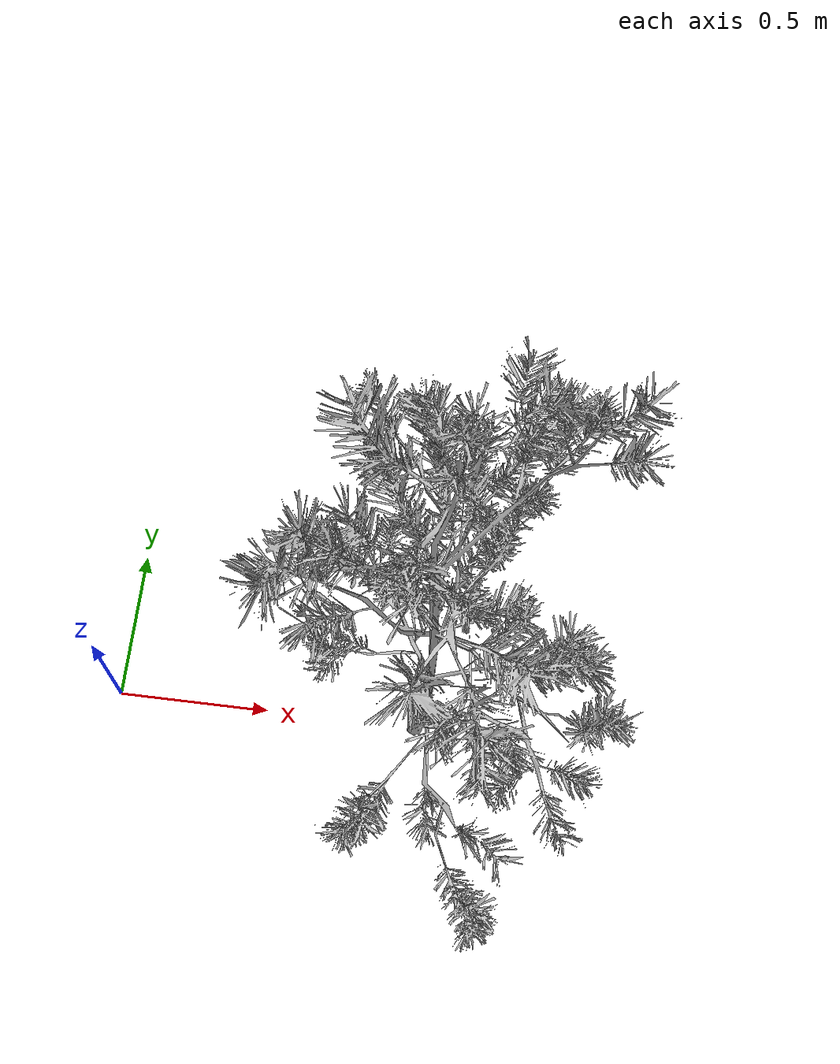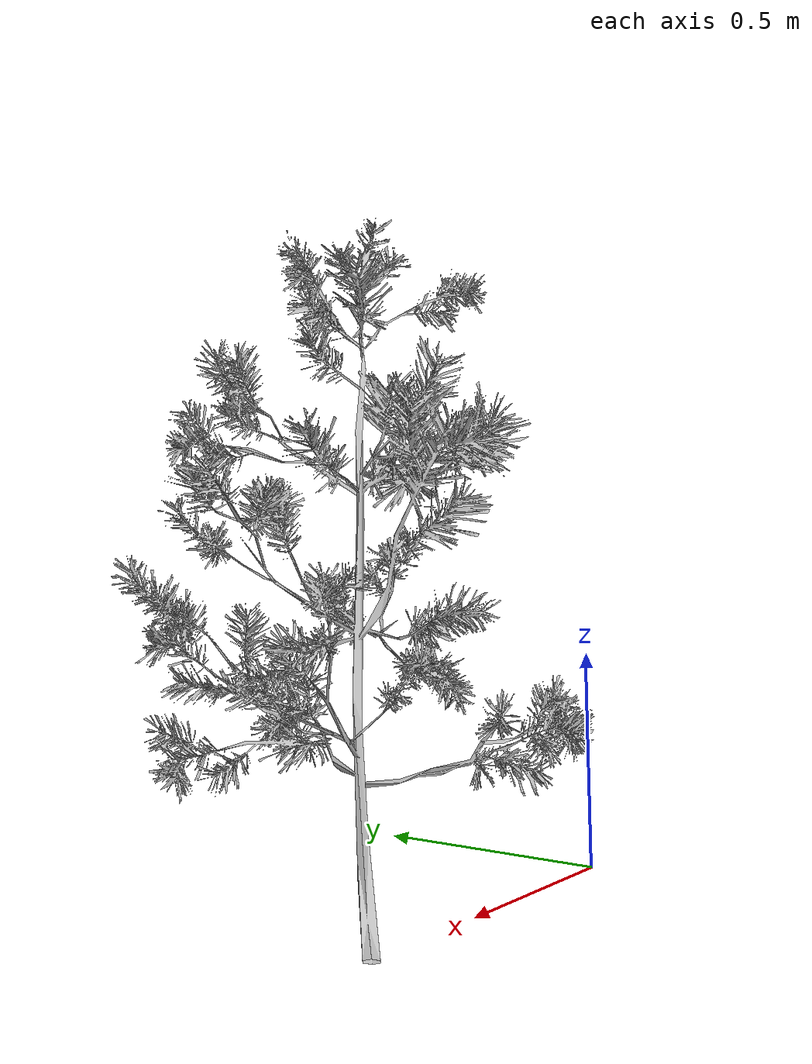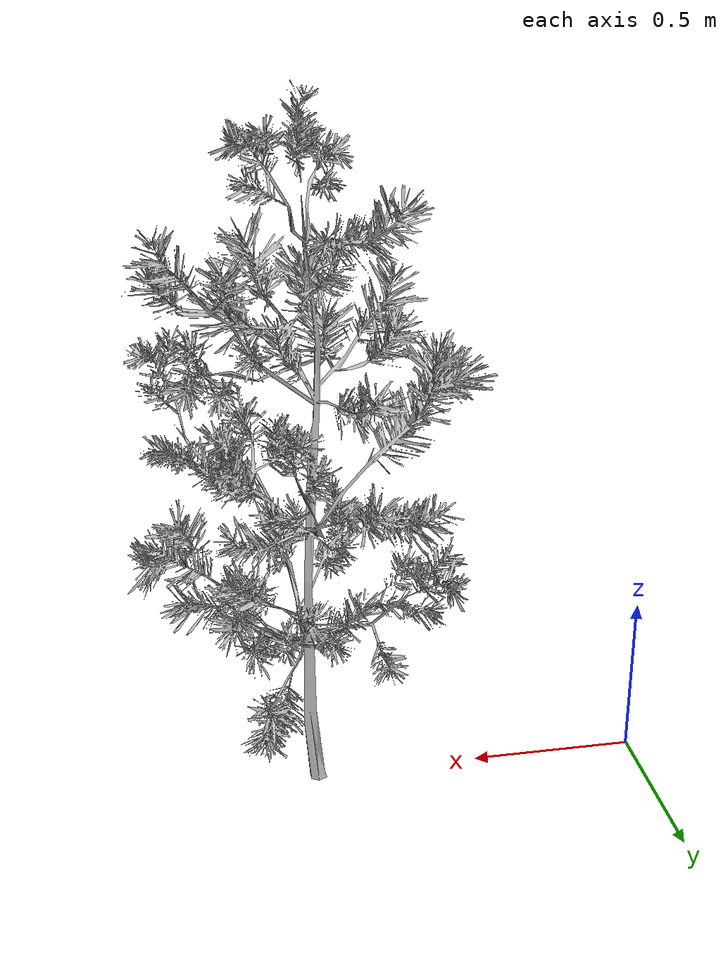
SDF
<?xml version="1.0" ?>
<sdf version="1.9">
  <model name="scot_pine">
    <static>true</static>
    <link name="link">
      <visual name="visual">
        <geometry>
          <mesh>
            <uri>model://scot_pine/meshes/Scot_pine.dae</uri>
          </mesh>
        </geometry>
      </visual>
      <collision name="collision">
        <geometry>
          <box>
            <size>1.2 1.2 8</size>
          </box>
        </geometry>
      </collision>
    </link>
  </model>
</sdf>
